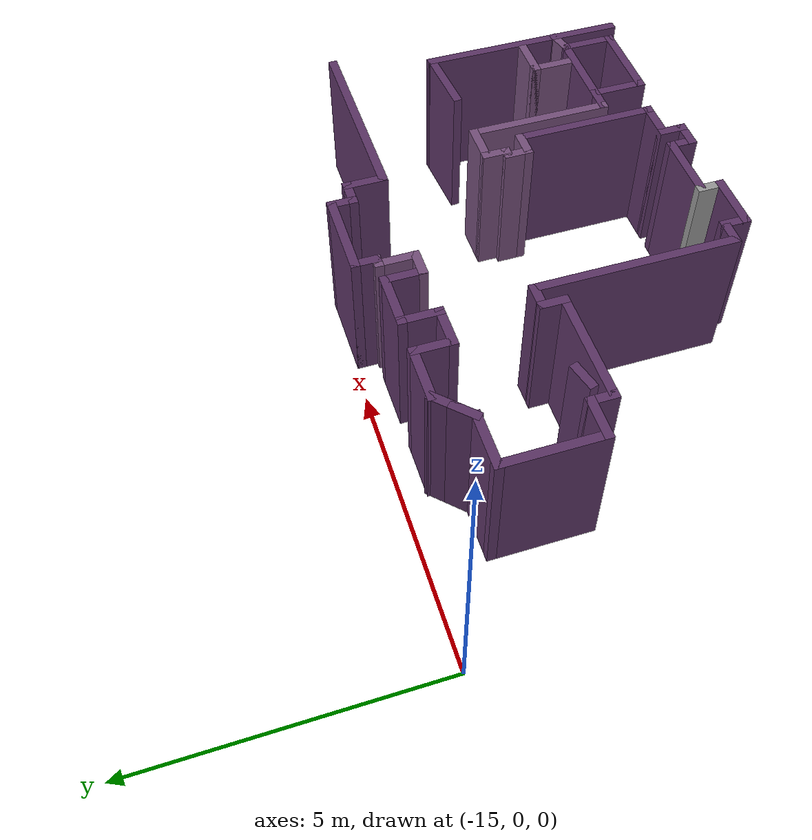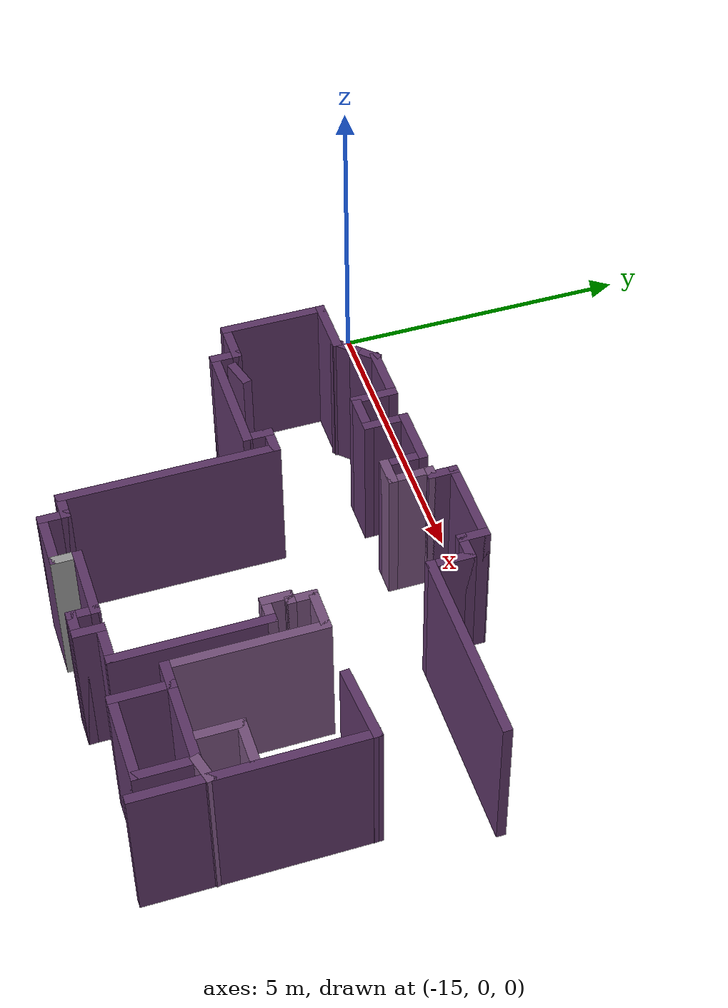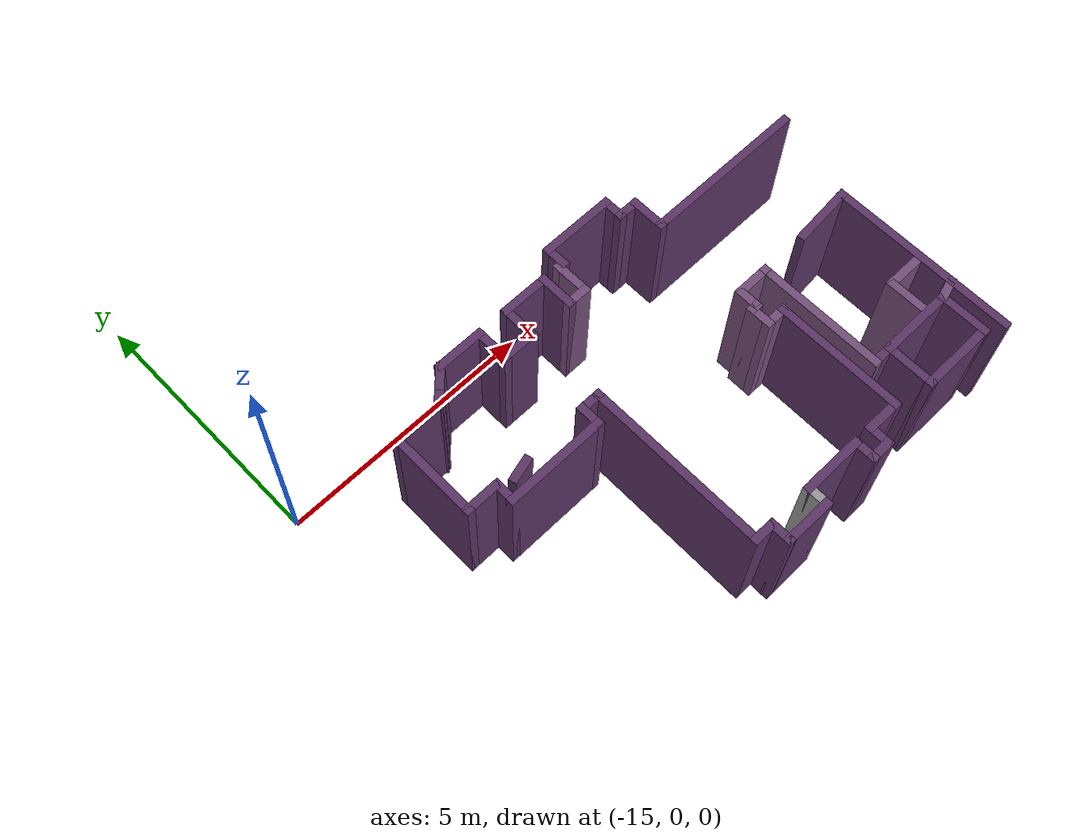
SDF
<sdf version="1.6">
 <model name="map_35">
  <pose>-6.03093 -2.69462 0 0 -0 0</pose>
  <link name="Wall_10">
   <collision name="Wall_10_Collision">
    <geometry><box><size>1.5 0.15 2.5</size></box></geometry>
    <pose>0 0 1.25 0 -0 0</pose>
   </collision>
   <visual name="Wall_10_Visual">
    <pose>0 0 1.25 0 -0 0</pose>
    <geometry><box><size>1.5 0.15 2.5</size></box></geometry>
    <material>
     <script><uri>file://media/materials/scripts/gazebo.material</uri><name>Gazebo/Grey</name></script>
     <ambient>0.360784 0.207843 0.4 1</ambient>
    </material>
    <meta><layer>0</layer></meta>
   </visual>
   <pose>-2.56239 2.57249 0 0 -0 3.14159</pose>
  </link>
  <link name="Wall_11">
   <collision name="Wall_11_Collision">
    <geometry><box><size>0.5 0.15 2.5</size></box></geometry>
    <pose>0 0 1.25 0 -0 0</pose>
   </collision>
   <visual name="Wall_11_Visual">
    <pose>0 0 1.25 0 -0 0</pose>
    <geometry><box><size>0.5 0.15 2.5</size></box></geometry>
    <material>
     <script><uri>file://media/materials/scripts/gazebo.material</uri><name>Gazebo/Grey</name></script>
     <ambient>0.360784 0.207843 0.4 1</ambient>
    </material>
    <meta><layer>0</layer></meta>
   </visual>
   <pose>-3.23739 2.39749 0 0 -0 -1.5708</pose>
  </link>
  <link name="Wall_12">
   <collision name="Wall_12_Collision">
    <geometry><box><size>0.25 0.15 2.5</size></box></geometry>
    <pose>0 0 1.25 0 -0 0</pose>
   </collision>
   <visual name="Wall_12_Visual">
    <pose>0 0 1.25 0 -0 0</pose>
    <geometry><box><size>0.25 0.15 2.5</size></box></geometry>
    <material>
     <script><uri>file://media/materials/scripts/gazebo.material</uri><name>Gazebo/Grey</name></script>
     <ambient>0.458824 0.313726 0.482353 1</ambient>
    </material>
    <meta><layer>0</layer></meta>
   </visual>
   <pose>-3.28739 2.22249 0 0 -0 3.14159</pose>
  </link>
  <link name="Wall_13">
   <collision name="Wall_13_Collision">
    <geometry><box><size>0.75 0.15 2.5</size></box></geometry>
    <pose>0 0 1.25 0 -0 0</pose>
   </collision>
   <visual name="Wall_13_Visual">
    <pose>0 0 1.25 0 -0 0</pose>
    <geometry><box><size>0.75 0.15 2.5</size></box></geometry>
    <material>
     <script><uri>file://media/materials/scripts/gazebo.material</uri><name>Gazebo/Grey</name></script>
     <ambient>0.458824 0.313726 0.482353 1</ambient>
    </material>
    <meta><layer>0</layer></meta>
   </visual>
   <pose>-3.33739 1.92249 0 0 -0 -1.5708</pose>
  </link>
  <link name="Wall_14">
   <collision name="Wall_14_Collision">
    <geometry><box><size>0.5 0.15 2.5</size></box></geometry>
    <pose>0 0 1.25 0 -0 0</pose>
   </collision>
   <visual name="Wall_14_Visual">
    <pose>0 0 1.25 0 -0 0</pose>
    <geometry><box><size>0.5 0.15 2.5</size></box></geometry>
    <material>
     <script><uri>file://media/materials/scripts/gazebo.material</uri><name>Gazebo/Grey</name></script>
     <ambient>0.458824 0.313726 0.482353 1</ambient>
    </material>
    <meta><layer>0</layer></meta>
   </visual>
   <pose>-3.51239 1.62249 0 0 -0 3.14159</pose>
  </link>
  <link name="Wall_155">
   <collision name="Wall_155_Collision">
    <geometry><box><size>0.5 0.15 2.5</size></box></geometry>
    <pose>0 0 1.25 0 -0 0</pose>
   </collision>
   <visual name="Wall_155_Visual">
    <pose>0 0 1.25 0 -0 0</pose>
    <geometry><box><size>0.5 0.15 2.5</size></box></geometry>
    <material>
     <script><uri>file://media/materials/scripts/gazebo.material</uri><name>Gazebo/Grey</name></script>
     <ambient>0.360784 0.207843 0.4 1</ambient>
    </material>
    <meta><layer>0</layer></meta>
   </visual>
   <pose>-6.29627 0.057679 0 0 -0 0.261799</pose>
  </link>
  <link name="Wall_17">
   <collision name="Wall_17_Collision">
    <geometry><box><size>0.75 0.15 2.5</size></box></geometry>
    <pose>0 0 1.25 0 -0 0</pose>
   </collision>
   <visual name="Wall_17_Visual">
    <pose>0 0 1.25 0 -0 0</pose>
    <geometry><box><size>0.75 0.15 2.5</size></box></geometry>
    <material>
     <script><uri>file://media/materials/scripts/gazebo.material</uri><name>Gazebo/Grey</name></script>
     <ambient>0.360784 0.207843 0.4 1</ambient>
    </material>
    <meta><layer>0</layer></meta>
   </visual>
   <pose>-3.68739 1.92249 0 0 -0 1.5708</pose>
  </link>
  <link name="Wall_18">
   <collision name="Wall_18_Collision">
    <geometry><box><size>1 0.15 2.5</size></box></geometry>
    <pose>0 0 1.25 0 -0 0</pose>
   </collision>
   <visual name="Wall_18_Visual">
    <pose>0 0 1.25 0 -0 0</pose>
    <geometry><box><size>1 0.15 2.5</size></box></geometry>
    <material>
     <script><uri>file://media/materials/scripts/gazebo.material</uri><name>Gazebo/Grey</name></script>
     <ambient>0.360784 0.207843 0.4 1</ambient>
    </material>
    <meta><layer>0</layer></meta>
   </visual>
   <pose>-4.11239 2.22249 0 0 -0 3.14159</pose>
  </link>
  <link name="Wall_19">
   <collision name="Wall_19_Collision">
    <geometry><box><size>0.75 0.15 2.5</size></box></geometry>
    <pose>0 0 1.25 0 -0 0</pose>
   </collision>
   <visual name="Wall_19_Visual">
    <pose>0 0 1.25 0 -0 0</pose>
    <geometry><box><size>0.75 0.15 2.5</size></box></geometry>
    <material>
     <script><uri>file://media/materials/scripts/gazebo.material</uri><name>Gazebo/Grey</name></script>
     <ambient>0.360784 0.207843 0.4 1</ambient>
    </material>
    <meta><layer>0</layer></meta>
   </visual>
   <pose>-4.53739 1.92249 0 0 -0 -1.5708</pose>
  </link>
  <link name="Wall_20">
   <collision name="Wall_20_Collision">
    <geometry><box><size>0.75 0.15 2.5</size></box></geometry>
    <pose>0 0 1.25 0 -0 0</pose>
   </collision>
   <visual name="Wall_20_Visual">
    <pose>0 0 1.25 0 -0 0</pose>
    <geometry><box><size>0.75 0.15 2.5</size></box></geometry>
    <material>
     <script><uri>file://media/materials/scripts/gazebo.material</uri><name>Gazebo/Grey</name></script>
     <ambient>0.360784 0.207843 0.4 1</ambient>
    </material>
    <meta><layer>0</layer></meta>
   </visual>
   <pose>-4.83739 1.62249 0 0 -0 3.14159</pose>
  </link>
  <link name="Wall_21">
   <collision name="Wall_21_Collision">
    <geometry><box><size>0.75 0.15 2.5</size></box></geometry>
    <pose>0 0 1.25 0 -0 0</pose>
   </collision>
   <visual name="Wall_21_Visual">
    <pose>0 0 1.25 0 -0 0</pose>
    <geometry><box><size>0.75 0.15 2.5</size></box></geometry>
    <material>
     <script><uri>file://media/materials/scripts/gazebo.material</uri><name>Gazebo/Grey</name></script>
     <ambient>0.360784 0.207843 0.4 1</ambient>
    </material>
    <meta><layer>0</layer></meta>
   </visual>
   <pose>-5.13739 1.92249 0 0 -0 1.5708</pose>
  </link>
  <link name="Wall_22">
   <collision name="Wall_22_Collision">
    <geometry><box><size>1 0.15 2.5</size></box></geometry>
    <pose>0 0 1.25 0 -0 0</pose>
   </collision>
   <visual name="Wall_22_Visual">
    <pose>0 0 1.25 0 -0 0</pose>
    <geometry><box><size>1 0.15 2.5</size></box></geometry>
    <material>
     <script><uri>file://media/materials/scripts/gazebo.material</uri><name>Gazebo/Grey</name></script>
     <ambient>0.360784 0.207843 0.4 1</ambient>
    </material>
    <meta><layer>0</layer></meta>
   </visual>
   <pose>-5.56239 2.22249 0 0 -0 3.14159</pose>
  </link>
  <link name="Wall_23">
   <collision name="Wall_23_Collision">
    <geometry><box><size>0.5 0.15 2.5</size></box></geometry>
    <pose>0 0 1.25 0 -0 0</pose>
   </collision>
   <visual name="Wall_23_Visual">
    <pose>0 0 1.25 0 -0 0</pose>
    <geometry><box><size>0.5 0.15 2.5</size></box></geometry>
    <material>
     <script><uri>file://media/materials/scripts/gazebo.material</uri><name>Gazebo/Grey</name></script>
     <ambient>0.360784 0.207843 0.4 1</ambient>
    </material>
    <meta><layer>0</layer></meta>
   </visual>
   <pose>-6.11113 2.09874 0 0 -0 -2.35619</pose>
  </link>
  <link name="Wall_24">
   <collision name="Wall_24_Collision">
    <geometry><box><size>0.5 0.15 2.5</size></box></geometry>
    <pose>0 0 1.25 0 -0 0</pose>
   </collision>
   <visual name="Wall_24_Visual">
    <pose>0 0 1.25 0 -0 0</pose>
    <geometry><box><size>0.5 0.15 2.5</size></box></geometry>
    <material>
     <script><uri>file://media/materials/scripts/gazebo.material</uri><name>Gazebo/Grey</name></script>
     <ambient>0.360784 0.207843 0.4 1</ambient>
    </material>
    <meta><layer>0</layer></meta>
   </visual>
   <pose>-6.35862 1.85126 0 0 -0 -2.35619</pose>
  </link>
  <link name="Wall_25">
   <collision name="Wall_25_Collision">
    <geometry><box><size>1 0.15 2.5</size></box></geometry>
    <pose>0 0 1.25 0 -0 0</pose>
   </collision>
   <visual name="Wall_25_Visual">
    <pose>0 0 1.25 0 -0 0</pose>
    <geometry><box><size>1 0.15 2.5</size></box></geometry>
    <material>
     <script><uri>file://media/materials/scripts/gazebo.material</uri><name>Gazebo/Grey</name></script>
     <ambient>0.360784 0.207843 0.4 1</ambient>
    </material>
    <meta><layer>0</layer></meta>
   </visual>
   <pose>-6.90736 1.72751 0 0 -0 3.14159</pose>
  </link>
  <link name="Wall_26">
   <collision name="Wall_26_Collision">
    <geometry><box><size>1.75 0.15 2.5</size></box></geometry>
    <pose>0 0 1.25 0 -0 0</pose>
   </collision>
   <visual name="Wall_26_Visual">
    <pose>0 0 1.25 0 -0 0</pose>
    <geometry><box><size>1.75 0.15 2.5</size></box></geometry>
    <material>
     <script><uri>file://media/materials/scripts/gazebo.material</uri><name>Gazebo/Grey</name></script>
     <ambient>0.360784 0.207843 0.4 1</ambient>
    </material>
    <meta><layer>0</layer></meta>
   </visual>
   <pose>-7.33236 0.927513 0 0 -0 -1.5708</pose>
  </link>
  <link name="Wall_27">
   <collision name="Wall_27_Collision">
    <geometry><box><size>0.75 0.15 2.5</size></box></geometry>
    <pose>0 0 1.25 0 -0 0</pose>
   </collision>
   <visual name="Wall_27_Visual">
    <pose>0 0 1.25 0 -0 0</pose>
    <geometry><box><size>0.75 0.15 2.5</size></box></geometry>
    <material>
     <script><uri>file://media/materials/scripts/gazebo.material</uri><name>Gazebo/Grey</name></script>
     <ambient>0.360784 0.207843 0.4 1</ambient>
    </material>
    <meta><layer>0</layer></meta>
   </visual>
   <pose>-7.03236 0.127513 0 0 -0 0</pose>
  </link>
  <link name="Wall_28">
   <collision name="Wall_28_Collision">
    <geometry><box><size>0.5 0.15 2.5</size></box></geometry>
    <pose>0 0 1.25 0 -0 0</pose>
   </collision>
   <visual name="Wall_28_Visual">
    <pose>0 0 1.25 0 -0 0</pose>
    <geometry><box><size>0.5 0.15 2.5</size></box></geometry>
    <material>
     <script><uri>file://media/materials/scripts/gazebo.material</uri><name>Gazebo/Grey</name></script>
     <ambient>0.360784 0.207843 0.4 1</ambient>
    </material>
    <meta><layer>0</layer></meta>
   </visual>
   <pose>-6.73236 -0.047487 0 0 -0 -1.5708</pose>
  </link>
  <link name="Wall_29">
   <collision name="Wall_29_Collision">
    <geometry><box><size>2 0.15 2.5</size></box></geometry>
    <pose>0 0 1.25 0 -0 0</pose>
   </collision>
   <visual name="Wall_29_Visual">
    <pose>0 0 1.25 0 -0 0</pose>
    <geometry><box><size>2 0.15 2.5</size></box></geometry>
    <material>
     <script><uri>file://media/materials/scripts/gazebo.material</uri><name>Gazebo/Grey</name></script>
     <ambient>0.360784 0.207843 0.4 1</ambient>
    </material>
    <meta><layer>0</layer></meta>
   </visual>
   <pose>-5.80736 -0.222487 0 0 -0 0</pose>
  </link>
  <link name="Wall_30">
   <collision name="Wall_30_Collision">
    <geometry><box><size>0.5 0.15 2.5</size></box></geometry>
    <pose>0 0 1.25 0 -0 0</pose>
   </collision>
   <visual name="Wall_30_Visual">
    <pose>0 0 1.25 0 -0 0</pose>
    <geometry><box><size>0.5 0.15 2.5</size></box></geometry>
    <material>
     <script><uri>file://media/materials/scripts/gazebo.material</uri><name>Gazebo/Grey</name></script>
     <ambient>0.360784 0.207843 0.4 1</ambient>
    </material>
    <meta><layer>0</layer></meta>
   </visual>
   <pose>-4.88236 -0.047487 0 0 -0 1.5708</pose>
  </link>
  <link name="Wall_31">
   <collision name="Wall_31_Collision">
    <geometry><box><size>0.5 0.15 2.5</size></box></geometry>
    <pose>0 0 1.25 0 -0 0</pose>
   </collision>
   <visual name="Wall_31_Visual">
    <pose>0 0 1.25 0 -0 0</pose>
    <geometry><box><size>0.5 0.15 2.5</size></box></geometry>
    <material>
     <script><uri>file://media/materials/scripts/gazebo.material</uri><name>Gazebo/Grey</name></script>
     <ambient>0.360784 0.207843 0.4 1</ambient>
    </material>
    <meta><layer>0</layer></meta>
   </visual>
   <pose>-4.70736 0.127513 0 0 -0 0</pose>
  </link>
  <link name="Wall_32">
   <collision name="Wall_32_Collision">
    <geometry><box><size>3.5 0.15 2.5</size></box></geometry>
    <pose>0 0 1.25 0 -0 0</pose>
   </collision>
   <visual name="Wall_32_Visual">
    <pose>0 0 1.25 0 -0 0</pose>
    <geometry><box><size>3.5 0.15 2.5</size></box></geometry>
    <material>
     <script><uri>file://media/materials/scripts/gazebo.material</uri><name>Gazebo/Grey</name></script>
     <ambient>0.360784 0.207843 0.4 1</ambient>
    </material>
    <meta><layer>0</layer></meta>
   </visual>
   <pose>-4.53236 -1.54749 0 0 -0 -1.5708</pose>
  </link>
  <link name="Wall_33">
   <collision name="Wall_33_Collision">
    <geometry><box><size>0.5 0.15 2.5</size></box></geometry>
    <pose>0 0 1.25 0 -0 0</pose>
   </collision>
   <visual name="Wall_33_Visual">
    <pose>0 0 1.25 0 -0 0</pose>
    <geometry><box><size>0.5 0.15 2.5</size></box></geometry>
    <material>
     <script><uri>file://media/materials/scripts/gazebo.material</uri><name>Gazebo/Grey</name></script>
     <ambient>0.360784 0.207843 0.4 1</ambient>
    </material>
    <meta><layer>0</layer></meta>
   </visual>
   <pose>-4.35736 -3.22249 0 0 -0 0</pose>
  </link>
  <link name="Wall_34">
   <collision name="Wall_34_Collision">
    <geometry><box><size>0.5 0.15 2.5</size></box></geometry>
    <pose>0 0 1.25 0 -0 0</pose>
   </collision>
   <visual name="Wall_34_Visual">
    <pose>0 0 1.25 0 -0 0</pose>
    <geometry><box><size>0.5 0.15 2.5</size></box></geometry>
    <material>
     <script><uri>file://media/materials/scripts/gazebo.material</uri><name>Gazebo/Grey</name></script>
     <ambient>0.360784 0.207843 0.4 1</ambient>
    </material>
    <meta><layer>0</layer></meta>
   </visual>
   <pose>-4.18236 -3.39749 0 0 -0 -1.5708</pose>
  </link>
  <link name="Wall_35">
   <collision name="Wall_35_Collision">
    <geometry><box><size>1 0.15 2.5</size></box></geometry>
    <pose>0 0 1.25 0 -0 0</pose>
   </collision>
   <visual name="Wall_35_Visual">
    <pose>0 0 1.25 0 -0 0</pose>
    <geometry><box><size>1 0.15 2.5</size></box></geometry>
    <material>
     <script><uri>file://media/materials/scripts/gazebo.material</uri><name>Gazebo/Grey</name></script>
     <ambient>0.360784 0.207843 0.4 1</ambient>
    </material>
    <meta><layer>0</layer></meta>
   </visual>
   <pose>-3.75736 -3.57249 0 0 -0 0</pose>
  </link>
  <link name="Wall_36">
   <collision name="Wall_36_Collision">
    <geometry><box><size>0.5 0.15 2.5</size></box></geometry>
    <pose>0 0 1.25 0 -0 0</pose>
   </collision>
   <visual name="Wall_36_Visual">
    <pose>0 0 1.25 0 -0 0</pose>
    <geometry><box><size>0.5 0.15 2.5</size></box></geometry>
    <material>
     <script><uri>file://media/materials/scripts/gazebo.material</uri><name>Gazebo/Grey</name></script>
     <ambient>1 1 1 1</ambient>
    </material>
    <meta><layer>0</layer></meta>
   </visual>
   <pose>-3.33236 -3.39749 0 0 -0 1.5708</pose>
  </link>
  <link name="Wall_37">
   <collision name="Wall_37_Collision">
    <geometry><box><size>1.25 0.15 2.5</size></box></geometry>
    <pose>0 0 1.25 0 -0 0</pose>
   </collision>
   <visual name="Wall_37_Visual">
    <pose>0 0 1.25 0 -0 0</pose>
    <geometry><box><size>1.25 0.15 2.5</size></box></geometry>
    <material>
     <script><uri>file://media/materials/scripts/gazebo.material</uri><name>Gazebo/Grey</name></script>
     <ambient>0.360784 0.207843 0.4 1</ambient>
    </material>
    <meta><layer>0</layer></meta>
   </visual>
   <pose>-2.78236 -3.22249 0 0 -0 0</pose>
  </link>
  <link name="Wall_40">
   <collision name="Wall_40_Collision">
    <geometry><box><size>0.5 0.15 2.5</size></box></geometry>
    <pose>0 0 1.25 0 -0 0</pose>
   </collision>
   <visual name="Wall_40_Visual">
    <pose>0 0 1.25 0 -0 0</pose>
    <geometry><box><size>0.5 0.15 2.5</size></box></geometry>
    <material>
     <script><uri>file://media/materials/scripts/gazebo.material</uri><name>Gazebo/Grey</name></script>
     <ambient>0.360784 0.207843 0.4 1</ambient>
    </material>
    <meta><layer>0</layer></meta>
   </visual>
   <pose>-2.23236 -3.39749 0 0 -0 -1.5708</pose>
  </link>
  <link name="Wall_41">
   <collision name="Wall_41_Collision">
    <geometry><box><size>0.5 0.15 2.5</size></box></geometry>
    <pose>0 0 1.25 0 -0 0</pose>
   </collision>
   <visual name="Wall_41_Visual">
    <pose>0 0 1.25 0 -0 0</pose>
    <geometry><box><size>0.5 0.15 2.5</size></box></geometry>
    <material>
     <script><uri>file://media/materials/scripts/gazebo.material</uri><name>Gazebo/Grey</name></script>
     <ambient>0.360784 0.207843 0.4 1</ambient>
    </material>
    <meta><layer>0</layer></meta>
   </visual>
   <pose>-2.05736 -3.57249 0 0 -0 0</pose>
  </link>
  <link name="Wall_42">
   <collision name="Wall_42_Collision">
    <geometry><box><size>0.5 0.15 2.5</size></box></geometry>
    <pose>0 0 1.25 0 -0 0</pose>
   </collision>
   <visual name="Wall_42_Visual">
    <pose>0 0 1.25 0 -0 0</pose>
    <geometry><box><size>0.5 0.15 2.5</size></box></geometry>
    <material>
     <script><uri>file://media/materials/scripts/gazebo.material</uri><name>Gazebo/Grey</name></script>
     <ambient>0.360784 0.207843 0.4 1</ambient>
    </material>
    <meta><layer>0</layer></meta>
   </visual>
   <pose>-1.88236 -3.39749 0 0 -0 1.5708</pose>
  </link>
  <link name="Wall_43">
   <collision name="Wall_43_Collision">
    <geometry><box><size>0.75 0.15 2.5</size></box></geometry>
    <pose>0 0 1.25 0 -0 0</pose>
   </collision>
   <visual name="Wall_43_Visual">
    <pose>0 0 1.25 0 -0 0</pose>
    <geometry><box><size>0.75 0.15 2.5</size></box></geometry>
    <material>
     <script><uri>file://media/materials/scripts/gazebo.material</uri><name>Gazebo/Grey</name></script>
     <ambient>0.360784 0.207843 0.4 1</ambient>
    </material>
    <meta><layer>0</layer></meta>
   </visual>
   <pose>-1.58236 -3.22249 0 0 -0 0</pose>
  </link>
  <link name="Wall_46">
   <collision name="Wall_46_Collision">
    <geometry><box><size>2.5 0.15 2.5</size></box></geometry>
    <pose>0 0 1.25 0 -0 0</pose>
   </collision>
   <visual name="Wall_46_Visual">
    <pose>0 0 1.25 0 -0 0</pose>
    <geometry><box><size>2.5 0.15 2.5</size></box></geometry>
    <material>
     <script><uri>file://media/materials/scripts/gazebo.material</uri><name>Gazebo/Grey</name></script>
     <ambient>0.360784 0.207843 0.4 1</ambient>
    </material>
    <meta><layer>0</layer></meta>
   </visual>
   <pose>-1.28236 -2.04749 0 0 -0 1.5708</pose>
  </link>
  <link name="Wall_49">
   <collision name="Wall_49_Collision">
    <geometry><box><size>0.5 0.15 2.5</size></box></geometry>
    <pose>0 0 1.25 0 -0 0</pose>
   </collision>
   <visual name="Wall_49_Visual">
    <pose>0 0 1.25 0 -0 0</pose>
    <geometry><box><size>0.5 0.15 2.5</size></box></geometry>
    <material>
     <script><uri>file://media/materials/scripts/gazebo.material</uri><name>Gazebo/Grey</name></script>
     <ambient>0.458824 0.313726 0.482353 1</ambient>
    </material>
    <meta><layer>0</layer></meta>
   </visual>
   <pose>-1.45736 -0.872487 0 0 -0 3.14159</pose>
  </link>
  <link name="Wall_50">
   <collision name="Wall_50_Collision">
    <geometry><box><size>0.5 0.15 2.5</size></box></geometry>
    <pose>0 0 1.25 0 -0 0</pose>
   </collision>
   <visual name="Wall_50_Visual">
    <pose>0 0 1.25 0 -0 0</pose>
    <geometry><box><size>0.5 0.15 2.5</size></box></geometry>
    <material>
     <script><uri>file://media/materials/scripts/gazebo.material</uri><name>Gazebo/Grey</name></script>
     <ambient>0.458824 0.313726 0.482353 1</ambient>
    </material>
    <meta><layer>0</layer></meta>
   </visual>
   <pose>-1.63236 -0.697487 0 0 -0 1.5708</pose>
  </link>
  <link name="Wall_51">
   <collision name="Wall_51_Collision">
    <geometry><box><size>0.25 0.15 2.5</size></box></geometry>
    <pose>0 0 1.25 0 -0 0</pose>
   </collision>
   <visual name="Wall_51_Visual">
    <pose>0 0 1.25 0 -0 0</pose>
    <geometry><box><size>0.25 0.15 2.5</size></box></geometry>
    <material>
     <script><uri>file://media/materials/scripts/gazebo.material</uri><name>Gazebo/Grey</name></script>
     <ambient>0.458824 0.313726 0.482353 1</ambient>
    </material>
    <meta><layer>0</layer></meta>
   </visual>
   <pose>-1.58236 -0.522487 0 0 -0 0</pose>
  </link>
  <link name="Wall_52">
   <collision name="Wall_52_Collision">
    <geometry><box><size>0.5 0.15 2.5</size></box></geometry>
    <pose>0 0 1.25 0 -0 0</pose>
   </collision>
   <visual name="Wall_52_Visual">
    <pose>0 0 1.25 0 -0 0</pose>
    <geometry><box><size>0.5 0.15 2.5</size></box></geometry>
    <material>
     <script><uri>file://media/materials/scripts/gazebo.material</uri><name>Gazebo/Grey</name></script>
     <ambient>0.458824 0.313726 0.482353 1</ambient>
    </material>
    <meta><layer>0</layer></meta>
   </visual>
   <pose>-1.53236 -0.347487 0 0 -0 1.5708</pose>
  </link>
  <link name="Wall_53">
   <collision name="Wall_53_Collision">
    <geometry><box><size>0.75 0.15 2.5</size></box></geometry>
    <pose>0 0 1.25 0 -0 0</pose>
   </collision>
   <visual name="Wall_53_Visual">
    <pose>0 0 1.25 0 -0 0</pose>
    <geometry><box><size>0.75 0.15 2.5</size></box></geometry>
    <material>
     <script><uri>file://media/materials/scripts/gazebo.material</uri><name>Gazebo/Grey</name></script>
     <ambient>0.458824 0.313726 0.482353 1</ambient>
    </material>
    <meta><layer>0</layer></meta>
   </visual>
   <pose>-1.23236 -0.172487 0 0 -0 0</pose>
  </link>
  <link name="Wall_54">
   <collision name="Wall_54_Collision">
    <geometry><box><size>2.5 0.15 2.5</size></box></geometry>
    <pose>0 0 1.25 0 -0 0</pose>
   </collision>
   <visual name="Wall_54_Visual">
    <pose>0 0 1.25 0 -0 0</pose>
    <geometry><box><size>2.5 0.15 2.5</size></box></geometry>
    <material>
     <script><uri>file://media/materials/scripts/gazebo.material</uri><name>Gazebo/Grey</name></script>
     <ambient>0.458824 0.313726 0.482353 1</ambient>
    </material>
    <meta><layer>0</layer></meta>
   </visual>
   <pose>-0.932362 -1.34749 0 0 -0 -1.5708</pose>
  </link>
  <link name="Wall_55">
   <collision name="Wall_55_Collision">
    <geometry><box><size>0.5 0.15 2.5</size></box></geometry>
    <pose>0 0 1.25 0 -0 0</pose>
   </collision>
   <visual name="Wall_55_Visual">
    <pose>0 0 1.25 0 -0 0</pose>
    <geometry><box><size>0.5 0.15 2.5</size></box></geometry>
    <material>
     <script><uri>file://media/materials/scripts/gazebo.material</uri><name>Gazebo/Grey</name></script>
     <ambient>0.360784 0.207843 0.4 1</ambient>
    </material>
    <meta><layer>0</layer></meta>
   </visual>
   <pose>-0.757362 -2.52249 0 0 -0 0</pose>
  </link>
  <link name="Wall_56">
   <collision name="Wall_56_Collision">
    <geometry><box><size>1 0.15 2.5</size></box></geometry>
    <pose>0 0 1.25 0 -0 0</pose>
   </collision>
   <visual name="Wall_56_Visual">
    <pose>0 0 1.25 0 -0 0</pose>
    <geometry><box><size>1 0.15 2.5</size></box></geometry>
    <material>
     <script><uri>file://media/materials/scripts/gazebo.material</uri><name>Gazebo/Grey</name></script>
     <ambient>0.360784 0.207843 0.4 1</ambient>
    </material>
    <meta><layer>0</layer></meta>
   </visual>
   <pose>-0.582361 -2.94749 0 0 -0 -1.5708</pose>
  </link>
  <link name="Wall_57">
   <collision name="Wall_57_Collision">
    <geometry><box><size>1.5 0.15 2.5</size></box></geometry>
    <pose>0 0 1.25 0 -0 0</pose>
   </collision>
   <visual name="Wall_57_Visual">
    <pose>0 0 1.25 0 -0 0</pose>
    <geometry><box><size>1.5 0.15 2.5</size></box></geometry>
    <material>
     <script><uri>file://media/materials/scripts/gazebo.material</uri><name>Gazebo/Grey</name></script>
     <ambient>0.360784 0.207843 0.4 1</ambient>
    </material>
    <meta><layer>0</layer></meta>
   </visual>
   <pose>0.092638 -3.37249 0 0 -0 0</pose>
  </link>
  <link name="Wall_58">
   <collision name="Wall_58_Collision">
    <geometry><box><size>1 0.15 2.5</size></box></geometry>
    <pose>0 0 1.25 0 -0 0</pose>
   </collision>
   <visual name="Wall_58_Visual">
    <pose>0 0 1.25 0 -0 0</pose>
    <geometry><box><size>1 0.15 2.5</size></box></geometry>
    <material>
     <script><uri>file://media/materials/scripts/gazebo.material</uri><name>Gazebo/Grey</name></script>
     <ambient>0.360784 0.207843 0.4 1</ambient>
    </material>
    <meta><layer>0</layer></meta>
   </visual>
   <pose>0.767638 -2.94749 0 0 -0 1.5708</pose>
  </link>
  <link name="Wall_59">
   <collision name="Wall_59_Collision">
    <geometry><box><size>1.5 0.15 2.5</size></box></geometry>
    <pose>0 0 1.25 0 -0 0</pose>
   </collision>
   <visual name="Wall_59_Visual">
    <pose>0 0 1.25 0 -0 0</pose>
    <geometry><box><size>1.5 0.15 2.5</size></box></geometry>
    <material>
     <script><uri>file://media/materials/scripts/gazebo.material</uri><name>Gazebo/Grey</name></script>
     <ambient>0.360784 0.207843 0.4 1</ambient>
    </material>
    <meta><layer>0</layer></meta>
   </visual>
   <pose>0.092638 -2.52249 0 0 -0 3.14159</pose>
  </link>
  <link name="Wall_6">
   <collision name="Wall_6_Collision">
    <geometry><box><size>3.25 0.15 2.5</size></box></geometry>
    <pose>0 0 1.25 0 -0 0</pose>
   </collision>
   <visual name="Wall_6_Visual">
    <pose>0 0 1.25 0 -0 0</pose>
    <geometry><box><size>3.25 0.15 2.5</size></box></geometry>
    <material>
     <script><uri>file://media/materials/scripts/gazebo.material</uri><name>Gazebo/Grey</name></script>
     <ambient>0.360784 0.207843 0.4 1</ambient>
    </material>
    <meta><layer>0</layer></meta>
   </visual>
   <pose>0.012613 1.62249 0 0 -0 3.14159</pose>
  </link>
  <link name="Wall_63">
   <collision name="Wall_63_Collision">
    <geometry><box><size>0.75 0.15 2.5</size></box></geometry>
    <pose>0 0 1.25 0 -0 0</pose>
   </collision>
   <visual name="Wall_63_Visual">
    <pose>0 0 1.25 0 -0 0</pose>
    <geometry><box><size>0.75 0.15 2.5</size></box></geometry>
    <material>
     <script><uri>file://media/materials/scripts/gazebo.material</uri><name>Gazebo/Grey</name></script>
     <ambient>0.458824 0.313726 0.482353 1</ambient>
    </material>
    <meta><layer>0</layer></meta>
   </visual>
   <pose>0.373312 -2.08113 0 0 -0 1.5708</pose>
  </link>
  <link name="Wall_64">
   <collision name="Wall_64_Collision">
    <geometry><box><size>0.75 0.15 2.5</size></box></geometry>
    <pose>0 0 1.25 0 -0 0</pose>
   </collision>
   <visual name="Wall_64_Visual">
    <pose>0 0 1.25 0 -0 0</pose>
    <geometry><box><size>0.75 0.15 2.5</size></box></geometry>
    <material>
     <script><uri>file://media/materials/scripts/gazebo.material</uri><name>Gazebo/Grey</name></script>
     <ambient>0.458824 0.313726 0.482353 1</ambient>
    </material>
    <meta><layer>0</layer></meta>
   </visual>
   <pose>0.673311 -1.78113 0 0 -0 0</pose>
  </link>
  <link name="Wall_66">
   <collision name="Wall_66_Collision">
    <geometry><box><size>0.5 0.15 2.5</size></box></geometry>
    <pose>0 0 1.25 0 -0 0</pose>
   </collision>
   <visual name="Wall_66_Visual">
    <pose>0 0 1.25 0 -0 0</pose>
    <geometry><box><size>0.5 0.15 2.5</size></box></geometry>
    <material>
     <script><uri>file://media/materials/scripts/gazebo.material</uri><name>Gazebo/Grey</name></script>
     <ambient>0.458824 0.313726 0.482353 1</ambient>
    </material>
    <meta><layer>0</layer></meta>
   </visual>
   <pose>0.936675 -2.47719 0 0 -0 0.261799</pose>
  </link>
  <link name="Wall_67">
   <collision name="Wall_67_Collision">
    <geometry><box><size>2.5 0.15 2.5</size></box></geometry>
    <pose>0 0 1.25 0 -0 0</pose>
   </collision>
   <visual name="Wall_67_Visual">
    <pose>0 0 1.25 0 -0 0</pose>
    <geometry><box><size>2.5 0.15 2.5</size></box></geometry>
    <material>
     <script><uri>file://media/materials/scripts/gazebo.material</uri><name>Gazebo/Grey</name></script>
     <ambient>0.360784 0.207843 0.4 1</ambient>
    </material>
    <meta><layer>0</layer></meta>
   </visual>
   <pose>1.10571 -1.2569 0 0 -0 1.5708</pose>
  </link>
  <link name="Wall_7">
   <collision name="Wall_7_Collision">
    <geometry><box><size>0.75 0.15 2.5</size></box></geometry>
    <pose>0 0 1.25 0 -0 0</pose>
   </collision>
   <visual name="Wall_7_Visual">
    <pose>0 0 1.25 0 -0 0</pose>
    <geometry><box><size>0.75 0.15 2.5</size></box></geometry>
    <material>
     <script><uri>file://media/materials/scripts/gazebo.material</uri><name>Gazebo/Grey</name></script>
     <ambient>0.360784 0.207843 0.4 1</ambient>
    </material>
    <meta><layer>0</layer></meta>
   </visual>
   <pose>-1.53739 1.92249 0 0 -0 1.5708</pose>
  </link>
  <link name="Wall_73">
   <collision name="Wall_73_Collision">
    <geometry><box><size>1.24788 0.15 2.5</size></box></geometry>
    <pose>0 0 1.25 0 -0 0</pose>
   </collision>
   <visual name="Wall_73_Visual">
    <pose>0 0 1.25 0 -0 0</pose>
    <geometry><box><size>1.24788 0.15 2.5</size></box></geometry>
    <material>
     <script><uri>file://media/materials/scripts/gazebo.material</uri><name>Gazebo/Grey</name></script>
     <ambient>0.360784 0.207843 0.4 1</ambient>
    </material>
    <meta><layer>0</layer></meta>
   </visual>
   <pose>0.55849 -0.125269 0 0 -0 0.079086</pose>
  </link>
  <link name="Wall_78">
   <collision name="Wall_78_Collision">
    <geometry><box><size>1.25 0.15 2.5</size></box></geometry>
    <pose>0 0 1.25 0 -0 0</pose>
   </collision>
   <visual name="Wall_78_Visual">
    <pose>0 0 1.25 0 -0 0</pose>
    <geometry><box><size>1.25 0.15 2.5</size></box></geometry>
    <material>
     <script><uri>file://media/materials/scripts/gazebo.material</uri><name>Gazebo/Grey</name></script>
     <ambient>0.360784 0.207843 0.4 1</ambient>
    </material>
    <meta><layer>0</layer></meta>
   </visual>
   <pose>1.10571 -2.9819 0 0 -0 -1.5708</pose>
  </link>
  <link name="Wall_8">
   <collision name="Wall_8_Collision">
    <geometry><box><size>0.5 0.15 2.5</size></box></geometry>
    <pose>0 0 1.25 0 -0 0</pose>
   </collision>
   <visual name="Wall_8_Visual">
    <pose>0 0 1.25 0 -0 0</pose>
    <geometry><box><size>0.5 0.15 2.5</size></box></geometry>
    <material>
     <script><uri>file://media/materials/scripts/gazebo.material</uri><name>Gazebo/Grey</name></script>
     <ambient>0.360784 0.207843 0.4 1</ambient>
    </material>
    <meta><layer>0</layer></meta>
   </visual>
   <pose>-1.71239 2.22249 0 0 -0 3.14159</pose>
  </link>
  <link name="Wall_9">
   <collision name="Wall_9_Collision">
    <geometry><box><size>0.5 0.15 2.5</size></box></geometry>
    <pose>0 0 1.25 0 -0 0</pose>
   </collision>
   <visual name="Wall_9_Visual">
    <pose>0 0 1.25 0 -0 0</pose>
    <geometry><box><size>0.5 0.15 2.5</size></box></geometry>
    <material>
     <script><uri>file://media/materials/scripts/gazebo.material</uri><name>Gazebo/Grey</name></script>
     <ambient>0.360784 0.207843 0.4 1</ambient>
    </material>
    <meta><layer>0</layer></meta>
   </visual>
   <pose>-1.88739 2.39749 0 0 -0 1.5708</pose>
  </link>
  <static>1</static>
 </model>
</sdf>
